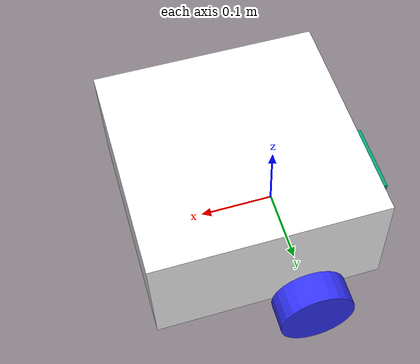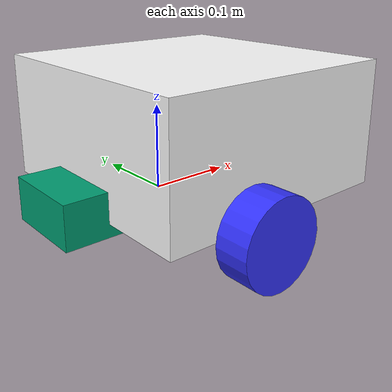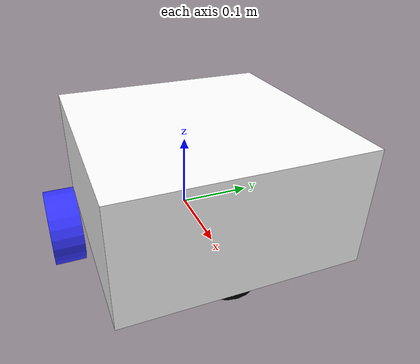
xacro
<?xml version="1.0"?>
<robot xmlns:xacro="http://www.ros.org/wiki/xacro" >

    <xacro:include filename="inertial_macros.xacro" />

    <material name="white">
        <color rgba="1 1 1 1" />
    </material>

    <material name="orange">
        <color rgba="1 0.3 0.1 1"/>
    </material>

    <material name="blue">
        <color rgba="0.2 0.2 1 1"/>
    </material>

    <material name="black">
        <color rgba="0 0 0 1"/>
    </material>

    <material name="red">
        <color rgba="1 0 0 1"/>
    </material>

    <!-- BASE LINK -->

    <link name="base_link">

    </link>

    <!-- chassis joint -->
    <joint name="chassis_joint" type="fixed">
        <parent link="base_link" />
        <child link="chassis" />
        <origin xyz="-0.1 0 0" />
    </joint>

    <!-- chassis link -->
    <link name="chassis">
        <visual>
            <origin xyz="0.15 0 0.075" />
            <geometry>
                <box size="0.3 0.3 0.15" />
            </geometry>
            <material name="white" />
        </visual>
        <collision>
            <origin xyz="0.15 0 0.075" />
            <geometry>
                <box size="0.3 0.3 0.15" />
            </geometry>
        </collision>
        <xacro:inertial_box mass="0.5" x="0.3" y="0.3" z="0.15">
            <origin xyz="0.15 0 0.075" rpy="0 0 0" />
        </xacro:inertial_box>
    </link>

    <gazebo reference="chassis">
        <material>Gazebo/White</material>
    </gazebo>

    <!-- IMU joint -->
    <joint name="imu_joint" type="fixed">
        <parent link="chassis" />
        <child link="imu_link" />
        <origin xyz="0 0 0.01" />
    </joint>

    <!-- IMU link -->
    <link name="imu_link">
    <visual>
        <geometry>
        <box size="0.1 0.1 0.05"/>
        </geometry>
    </visual>

    <collision>
        <geometry>
        <box size="0.1 0.1 0.05"/>
        </geometry>
    </collision>

    <xacro:inertial_box mass="0.1" x="0.1" y="0.1" z="0.05">
        <origin xyz="0 0 0.05" rpy="0 0 0" />
    </xacro:inertial_box>
    </link>

    <!-- sensor plugin for gazebo -->
    <gazebo reference="imu_link">
        <sensor name="imu_sensor" type="imu">
        <plugin filename="libgazebo_ros_imu_sensor.so" name="imu_plugin">
            <ros>
                <namespace>/demo</namespace>
                <remapping>~/out:=imu</remapping>
            </ros>
            <initial_orientation_as_reference>false</initial_orientation_as_reference>
            </plugin>
            <always_on>true</always_on>
            <update_rate>100</update_rate>
            <visualize>true</visualize>
            <imu>
            <angular_velocity>
                <x>
                <noise type="gaussian">
                    <mean>0.0</mean>
                    <stddev>2e-4</stddev>
                    <bias_mean>0.0000075</bias_mean>
                    <bias_stddev>0.0000008</bias_stddev>
                </noise>
                </x>
                <y>
                <noise type="gaussian">
                    <mean>0.0</mean>
                    <stddev>2e-4</stddev>
                    <bias_mean>0.0000075</bias_mean>
                    <bias_stddev>0.0000008</bias_stddev>
                </noise>
                </y>
                <z>
                <noise type="gaussian">
                    <mean>0.0</mean>
                    <stddev>2e-4</stddev>
                    <bias_mean>0.0000075</bias_mean>
                    <bias_stddev>0.0000008</bias_stddev>
                </noise>
                </z>
            </angular_velocity>
            <linear_acceleration>
                <x>
                <noise type="gaussian">
                    <mean>0.0</mean>
                    <stddev>1.7e-2</stddev>
                    <bias_mean>0.1</bias_mean>
                    <bias_stddev>0.001</bias_stddev>
                </noise>
                </x>
                <y>
                <noise type="gaussian">
                    <mean>0.0</mean>
                    <stddev>1.7e-2</stddev>
                    <bias_mean>0.1</bias_mean>
                    <bias_stddev>0.001</bias_stddev>
                </noise>
                </y>
                <z>
                <noise type="gaussian">
                    <mean>0.0</mean>
                    <stddev>1.7e-2</stddev>
                    <bias_mean>0.1</bias_mean>
                    <bias_stddev>0.001</bias_stddev>
                </noise>
                </z>
            </linear_acceleration>
            </imu>
        </sensor>
    </gazebo>

    <!-- left wheel joint -->
    <joint name="left_wheel_joint" type="continuous">
        <parent link="base_link" />
        <child link="left_wheel" />
        <origin xyz="0 0.175 0" rpy="-${pi/2} 0 0" />
        <axis xyz="0 0 1" />
    </joint>

    <!-- left wheel link -->
    <link name="left_wheel">
        <visual>
            <geometry>
                <cylinder radius="0.05" length="0.04" />
            </geometry>
            <material name="blue" />
        </visual>
        <collision>
            <geometry>
                <cylinder radius="0.05" length="0.04" />
            </geometry>
        </collision>
        <xacro:inertial_cylinder mass="0.1" length="0.04" radius="0.05">
            <origin xyz="0 0 0" rpy="0 0 0" />
        </xacro:inertial_cylinder>
    </link>

    <gazebo reference="left_wheel">
        <material>Gazebo/Blue</material>
    </gazebo>

    <!-- right wheel joint -->
    <joint name="right_wheel_joint" type="continuous">
        <parent link="base_link" />
        <child link="right_wheel" />
        <origin xyz="0 -0.175 0" rpy="${pi/2} 0 0" />
        <axis xyz="0 0 -1" />
    </joint>

    <!-- right wheel link -->
    <link name="right_wheel">
        <visual>
            <geometry>
                <cylinder radius="0.05" length="0.04" />
            </geometry>
            <material name="blue" />
        </visual>
        <collision>
            <geometry>
                <cylinder radius="0.05" length="0.04" />
            </geometry>
        </collision>
        <xacro:inertial_cylinder mass="0.1" length="0.04" radius="0.05">
            <origin xyz="0 0 0" rpy="0 0 0" />
        </xacro:inertial_cylinder>
    </link>

    <gazebo reference="right_wheel">
        <material>Gazebo/Blue</material>
    </gazebo>

    <!-- caster wheel joint -->
    <joint name="caster_wheel_joint" type="fixed">
        <parent link="chassis" />
        <child link="caster_wheel" />
        <origin xyz="0.24 0 0" />
    </joint>

    <!-- caster wheel link -->
    <link name="caster_wheel">
        <visual>
            <geometry>
                <sphere radius="0.05" />
            </geometry>
            <material name="black" />
        </visual>
        <collision>
            <geometry>
                <sphere radius="0.05" />
            </geometry>
        </collision>
        <xacro:inertial_sphere mass="0.1" radius="0.05">
            <origin xyz="0 0 0" rpy="0 0 0" />
        </xacro:inertial_sphere>
    </link>

    <gazebo reference="caster_wheel">
        <material>Gazebo/Black</material>
        <mu1>0.001</mu1>
        <mu2>0.001</mu2>
    </gazebo>

</robot>
